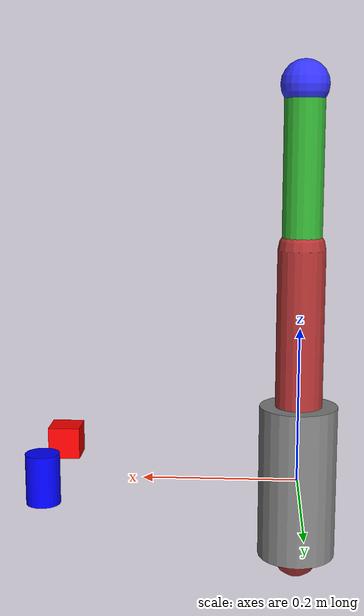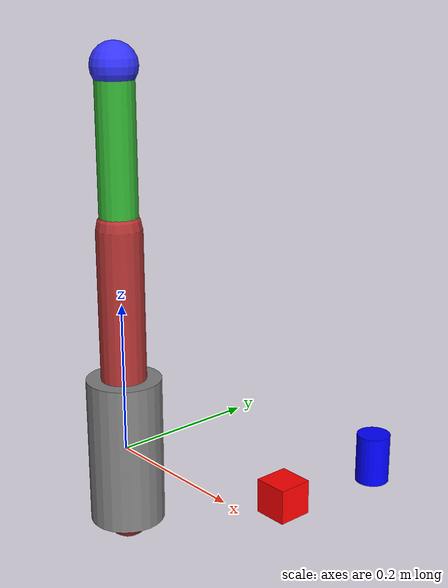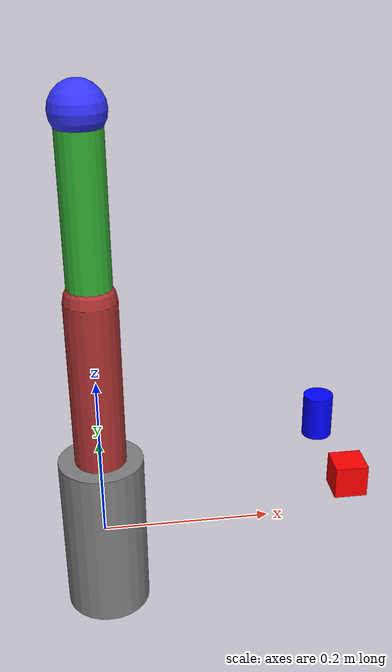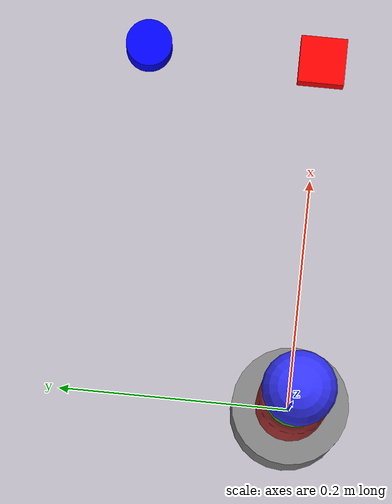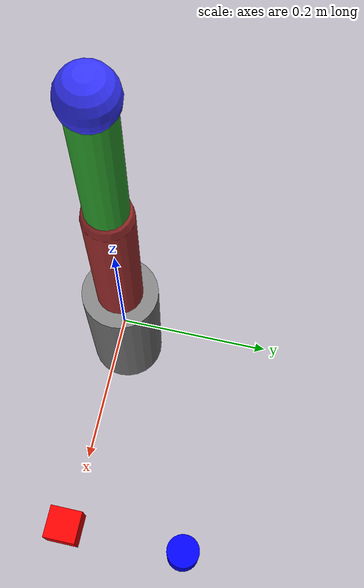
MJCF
<mujoco model="so101">

    <compiler angle="degree" coordinate="local"/>
    <option gravity="0 0 -9.81" integrator="RK4"/>

    <worldbody>

        <!-- ROBOT BASE -->
        <body name="base" pos="0 0 0">

            <!-- JOINT 1 -->
            <joint name="joint1" type="hinge" axis="0 0 1" pos="0 0 0"/>

            <geom type="cylinder" size="0.05 0.1" rgba="0.5 0.5 0.5 1"/>

            <!-- LINK 1 -->
            <body name="link1" pos="0 0 0.1">
                <joint name="joint2" type="hinge" axis="0 1 0"/>

                <geom type="capsule" size="0.03 0.2" rgba="0.7 0.2 0.2 1"/>

                <!-- LINK 2 -->
                <body name="link2" pos="0 0 0.2">
                    <joint name="joint3" type="hinge" axis="0 1 0"/>

                    <geom type="capsule" size="0.025 0.2" rgba="0.2 0.7 0.2 1"/>

                    <!-- END EFFECTOR -->
                    <body name="end_effector" pos="0 0 0.2">

                        <!-- 🔥 CAMERA ATTACHED TO ARM -->
                        <camera name="arm_cam" pos="0 0 0.05" />

                        <!-- TOOL / GRIPPER -->
                        <geom type="sphere" size="0.03" rgba="0.2 0.2 1 1"/>

                    </body>

                </body>

            </body>

        </body>

        <!-- PLUG (RED BOX) -->
        <body name="plug" pos="0.3 0 0.05">
            <freejoint/>
            <inertial pos="0 0 0" mass="0.1" diaginertia="0.0001 0.0001 0.0001"/>
            <geom type="box" size="0.02 0.02 0.02" rgba="1 0 0 1"/>
        </body>

        <!-- SOCKET (BLUE CYLINDER) -->
        <body name="socket" pos="0.3 0.15 0.05">
            <freejoint/>
            <inertial pos="0 0 0" mass="0.1" diaginertia="0.0001 0.0001 0.0001"/>
            <geom type="cylinder" size="0.02 0.03" rgba="0 0 1 1"/>
        </body>

    </worldbody>

</mujoco>
